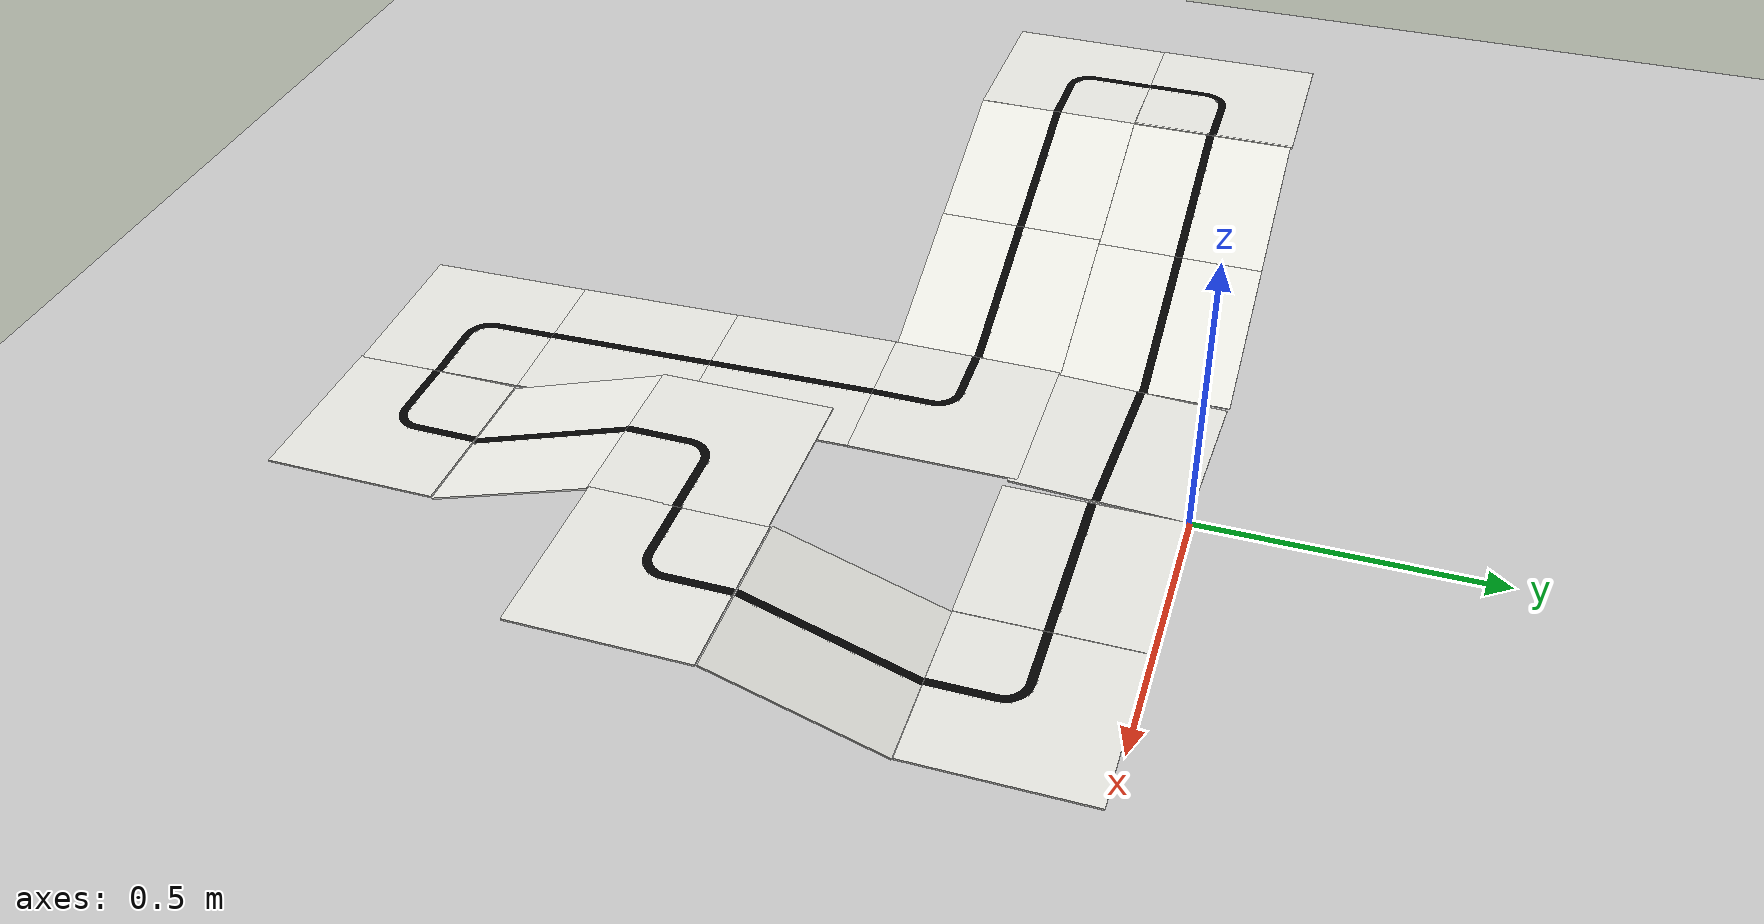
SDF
<sdf version="1.7">
 <world name="default">
  <light name="sun" type="directional">
   <cast_shadows>0</cast_shadows>
   <pose>0 0 5 0 0 0</pose>
   <diffuse>1.0 1.0 1.0 1</diffuse>
   <specular>0.3 0.3 0.3 1</specular>
   <attenuation>
    <range>1000</range>
    <constant>0.9</constant>
    <linear>0.01</linear>
    <quadratic>0.001</quadratic>
   </attenuation>
   <direction>0 0 -1</direction>
  </light>
  <light name="light_overhead_1" type="point">
   <cast_shadows>0</cast_shadows>
   <pose>0 -0.8 2.5 0 0 0</pose>
   <diffuse>1.0 1.0 1.0 1</diffuse>
   <specular>0.2 0.2 0.2 1</specular>
   <attenuation>
    <range>50</range>
    <constant>0.4</constant>
    <linear>0.03</linear>
    <quadratic>0.002</quadratic>
   </attenuation>
  </light>
  <light name="light_overhead_2" type="point">
   <cast_shadows>0</cast_shadows>
   <pose>0.5 -0.5 2.5 0 0 0</pose>
   <diffuse>1.0 1.0 1.0 1</diffuse>
   <specular>0.2 0.2 0.2 1</specular>
   <attenuation>
    <range>50</range>
    <constant>0.4</constant>
    <linear>0.03</linear>
    <quadratic>0.002</quadratic>
   </attenuation>
  </light>
  <light name="light_overhead_3" type="point">
   <cast_shadows>0</cast_shadows>
   <pose>-0.5 -0.5 2.5 0 0 0</pose>
   <diffuse>1.0 1.0 1.0 1</diffuse>
   <specular>0.2 0.2 0.2 1</specular>
   <attenuation>
    <range>50</range>
    <constant>0.4</constant>
    <linear>0.03</linear>
    <quadratic>0.002</quadratic>
   </attenuation>
  </light>
  <model name="ground_plane">
   <static>1</static>
   <link name="link">
    <collision name="collision">
     <geometry><plane><normal>0 0 1</normal><size>100 100</size></plane></geometry>
     <surface>
      <contact><collide_bitmask>65535</collide_bitmask></contact>
      <friction><ode><mu>100</mu><mu2>50</mu2></ode></friction>
     </surface>
    </collision>
    <visual name="visual">
     <cast_shadows>0</cast_shadows>
     <geometry><plane><normal>0 0 1</normal><size>100 100</size></plane></geometry>
     <material>
      <script><uri>file://media/materials/scripts/gazebo.material</uri><name>Gazebo/Grey</name></script>
     </material>
    </visual>
   </link>
  </model>
  <gravity>0 0 -9.8</gravity>
  <magnetic_field>6e-06 2.3e-05 -4.2e-05</magnetic_field>
  <atmosphere type="adiabatic"/>
  <physics type="ode">
   <max_step_size>0.001</max_step_size>
   <real_time_factor>1</real_time_factor>
   <real_time_update_rate>1000</real_time_update_rate>
  </physics>
  <scene><ambient>0.85 0.85 0.85 1</ambient><background>0.8 0.8 0.8 1</background><shadows>0</shadows></scene>
  <audio><device>none</device></audio>
  <spherical_coordinates>
   <surface_model>EARTH_WGS84</surface_model>
   <latitude_deg>0</latitude_deg>
   <longitude_deg>0</longitude_deg>
   <elevation>0</elevation>
   <heading_deg>0</heading_deg>
  </spherical_coordinates>
  <model name="tile_reta">
   <static>1</static>
   <link name="tile_reta">
    <visual name="visual_tile_reta">
     <pose>0 0 0 1.5708 -0 0</pose>
     <geometry>
      <mesh><uri>/workspace/tiles/tile-reta/meshes/tile_reta.dae</uri><scale>1 1 1</scale></mesh>
     </geometry>
    </visual>
    <collision name="colisao_tile_reta"><geometry><box><size>0.3 0.3 0.003</size></box></geometry></collision>
   </link>
   <pose>0.002258 -0.007306 0.000000 0 -0 0</pose>
  </model>
  <model name="tile_curva">
   <static>1</static>
   <link name="tile_curva">
    <visual name="visual_tile_curva">
     <pose>0 0 0 1.5708 -0 0</pose>
     <geometry>
      <mesh><uri>/workspace/tiles/tile-curva/meshes/tile_curva.dae</uri><scale>1 1 1</scale></mesh>
     </geometry>
    </visual>
    <collision name="colisao_tile_curva"><geometry><box><size>0.3 0.3 0.003</size></box></geometry></collision>
   </link>
   <pose>0.302973 -0.006862 0.000000 0 -0 0</pose>
  </model>
  <model name="tile_reta_0">
   <static>1</static>
   <link name="tile_reta">
    <visual name="visual_tile_reta">
     <pose>0 0 0 1.5708 -0 0</pose>
     <geometry>
      <mesh><uri>/workspace/tiles/tile-reta/meshes/tile_reta.dae</uri><scale>1 1 1</scale></mesh>
     </geometry>
    </visual>
    <collision name="colisao_tile_reta"><geometry><box><size>0.3 0.3 0.003</size></box></geometry></collision>
   </link>
   <pose>0.604228 -0.309296 -0.000000 0 -0.325123 -1.57618</pose>
  </model>
  <model name="tile_curva_0">
   <static>1</static>
   <link name="tile_curva">
    <visual name="visual_tile_curva">
     <pose>0 0 0 1.5708 -0 0</pose>
     <geometry>
      <mesh><uri>/workspace/tiles/tile-curva/meshes/tile_curva.dae</uri><scale>1 1 1</scale></mesh>
     </geometry>
    </visual>
    <collision name="colisao_tile_curva"><geometry><box><size>0.3 0.3 0.003</size></box></geometry></collision>
   </link>
   <pose>0.603150 -0.596214 0.094967 0 0 -1.57651</pose>
  </model>
  <model name="tile_curva_0_clone">
   <static>1</static>
   <link name="tile_curva">
    <visual name="visual_tile_curva">
     <pose>0 0 0 1.5708 -0 0</pose>
     <geometry>
      <mesh><uri>/workspace/tiles/tile-curva/meshes/tile_curva.dae</uri><scale>1 1 1</scale></mesh>
     </geometry>
    </visual>
    <collision name="colisao_tile_curva"><geometry><box><size>0.3 0.3 0.003</size></box></geometry></collision>
   </link>
   <pose>0.003624 -0.894709 0.094967 0 -0 1.56459</pose>
  </model>
  <model name="tile_reta_0_clone">
   <static>1</static>
   <link name="tile_reta">
    <visual name="visual_tile_reta">
     <pose>0 0 0 1.5708 -0 0</pose>
     <geometry>
      <mesh><uri>/workspace/tiles/tile-reta/meshes/tile_reta.dae</uri><scale>1 1 1</scale></mesh>
     </geometry>
    </visual>
    <collision name="colisao_tile_reta"><geometry><box><size>0.3 0.3 0.003</size></box></geometry></collision>
   </link>
   <pose>0.304244 -0.896664 0.092940 0 0.325122 -1.57618</pose>
  </model>
  <model name="tile_curva_clone">
   <static>1</static>
   <link name="tile_curva">
    <visual name="visual_tile_curva">
     <pose>0 0 0 1.5708 -0 0</pose>
     <geometry>
      <mesh><uri>/workspace/tiles/tile-curva/meshes/tile_curva.dae</uri><scale>1 1 1</scale></mesh>
     </geometry>
    </visual>
    <collision name="colisao_tile_curva"><geometry><box><size>0.3 0.3 0.003</size></box></geometry></collision>
   </link>
   <pose>0.302356 -1.183170 0.000000 0 0 -1.5772</pose>
  </model>
  <model name="tile_curva_clone_clone">
   <static>1</static>
   <link name="tile_curva">
    <visual name="visual_tile_curva">
     <pose>0 0 0 1.5708 -0 0</pose>
     <geometry>
      <mesh><uri>/workspace/tiles/tile-curva/meshes/tile_curva.dae</uri><scale>1 1 1</scale></mesh>
     </geometry>
    </visual>
    <collision name="colisao_tile_curva"><geometry><box><size>0.3 0.3 0.003</size></box></geometry></collision>
   </link>
   <pose>0.003361 -1.479000 0.000000 0 0 -3.12287</pose>
  </model>
  <model name="tile_reta_1">
   <static>1</static>
   <link name="tile_reta">
    <visual name="visual_tile_reta">
     <pose>0 0 0 1.5708 -0 0</pose>
     <geometry>
      <mesh><uri>/workspace/tiles/tile-reta/meshes/tile_reta.dae</uri><scale>1 1 1</scale></mesh>
     </geometry>
    </visual>
    <collision name="colisao_tile_reta"><geometry><box><size>0.3 0.3 0.003</size></box></geometry></collision>
   </link>
   <pose>-0.303162 -1.187580 0.000000 0 -0 1.5966</pose>
  </model>
  <model name="tile_reta_1_clone">
   <static>1</static>
   <link name="tile_reta">
    <visual name="visual_tile_reta">
     <pose>0 0 0 1.5708 -0 0</pose>
     <geometry>
      <mesh><uri>/workspace/tiles/tile-reta/meshes/tile_reta.dae</uri><scale>1 1 1</scale></mesh>
     </geometry>
    </visual>
    <collision name="colisao_tile_reta"><geometry><box><size>0.3 0.3 0.003</size></box></geometry></collision>
   </link>
   <pose>-0.311282 -0.888189 0.000000 0 -0 1.5966</pose>
  </model>
  <model name="tile_curva_clone_0">
   <static>1</static>
   <link name="tile_curva">
    <visual name="visual_tile_curva">
     <pose>0 0 0 1.5708 -0 0</pose>
     <geometry>
      <mesh><uri>/workspace/tiles/tile-curva/meshes/tile_curva.dae</uri><scale>1 1 1</scale></mesh>
     </geometry>
    </visual>
    <collision name="colisao_tile_curva"><geometry><box><size>0.3 0.3 0.003</size></box></geometry></collision>
   </link>
   <pose>-0.318715 -0.287405 0.000000 0 -0 0</pose>
  </model>
  <model name="tile_reta_clone">
   <static>1</static>
   <link name="tile_reta">
    <visual name="visual_tile_reta">
     <pose>0 0 0 1.5708 -0 0</pose>
     <geometry>
      <mesh><uri>/workspace/tiles/tile-reta/meshes/tile_reta.dae</uri><scale>1 1 1</scale></mesh>
     </geometry>
    </visual>
    <collision name="colisao_tile_reta"><geometry><box><size>0.3 0.3 0.003</size></box></geometry></collision>
   </link>
   <pose>-0.319237 -0.584460 0.000000 0 -0.34 3.13762</pose>
  </model>
  <model name="tile_reta_clone_clone">
   <static>1</static>
   <link name="tile_reta">
    <visual name="visual_tile_reta">
     <pose>0 0 0 1.5708 -0 0</pose>
     <geometry>
      <mesh><uri>/workspace/tiles/tile-reta/meshes/tile_reta.dae</uri><scale>1 1 1</scale></mesh>
     </geometry>
    </visual>
    <collision name="colisao_tile_reta"><geometry><box><size>0.3 0.3 0.003</size></box></geometry></collision>
   </link>
   <pose>-0.590402 -0.582774 0.095262 0 -0.34 3.13762</pose>
  </model>
  <model name="tile_curva_0_clone_clone">
   <static>1</static>
   <link name="tile_curva">
    <visual name="visual_tile_curva">
     <pose>0 0 0 1.5708 -0 0</pose>
     <geometry>
      <mesh><uri>/workspace/tiles/tile-curva/meshes/tile_curva.dae</uri><scale>1 1 1</scale></mesh>
     </geometry>
    </visual>
    <collision name="colisao_tile_curva"><geometry><box><size>0.3 0.3 0.003</size></box></geometry></collision>
   </link>
   <pose>-0.873563 -0.581794 0.194882 0 -0 3.12965</pose>
  </model>
  <model name="tile_curva_0_clone_clone_clone">
   <static>1</static>
   <link name="tile_curva">
    <visual name="visual_tile_curva">
     <pose>0 0 0 1.5708 -0 0</pose>
     <geometry>
      <mesh><uri>/workspace/tiles/tile-curva/meshes/tile_curva.dae</uri><scale>1 1 1</scale></mesh>
     </geometry>
    </visual>
    <collision name="colisao_tile_curva"><geometry><box><size>0.3 0.3 0.003</size></box></geometry></collision>
   </link>
   <pose>-1.171310 -0.280130 0.194882 0 -0 1.56934</pose>
  </model>
  <model name="tile_reta_clone_clone_clone">
   <static>1</static>
   <link name="tile_reta">
    <visual name="visual_tile_reta">
     <pose>0 0 0 1.5708 -0 0</pose>
     <geometry>
      <mesh><uri>/workspace/tiles/tile-reta/meshes/tile_reta.dae</uri><scale>1 1 1</scale></mesh>
     </geometry>
    </visual>
    <collision name="colisao_tile_reta"><geometry><box><size>0.3 0.3 0.003</size></box></geometry></collision>
   </link>
   <pose>-0.593549 -0.285169 0.095262 0 -0.34 3.13762</pose>
  </model>
  <model name="tile_reta_clone_clone_0">
   <static>1</static>
   <link name="tile_reta">
    <visual name="visual_tile_reta">
     <pose>0 0 0 1.5708 -0 0</pose>
     <geometry>
      <mesh><uri>/workspace/tiles/tile-reta/meshes/tile_reta.dae</uri><scale>1 1 1</scale></mesh>
     </geometry>
    </visual>
    <collision name="colisao_tile_reta"><geometry><box><size>0.3 0.3 0.003</size></box></geometry></collision>
   </link>
   <pose>-0.310740 -0.286057 -0.003611 0 -0.34 3.13762</pose>
  </model>
  <model name="tile_reta_clone_0">
   <static>1</static>
   <link name="tile_reta">
    <visual name="visual_tile_reta">
     <pose>0 0 0 1.5708 -0 0</pose>
     <geometry>
      <mesh><uri>/workspace/tiles/tile-reta/meshes/tile_reta.dae</uri><scale>1 1 1</scale></mesh>
     </geometry>
    </visual>
    <collision name="colisao_tile_reta"><geometry><box><size>0.3 0.3 0.003</size></box></geometry></collision>
   </link>
   <pose>-0.297080 0.011054 0.000000 0 0 -0.048227</pose>
  </model>
 </world>
</sdf>
